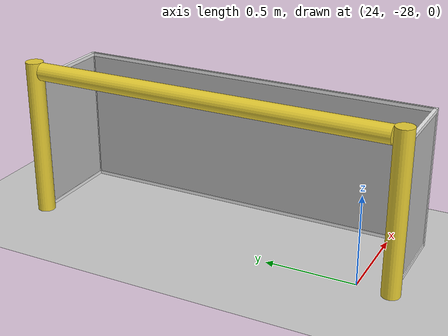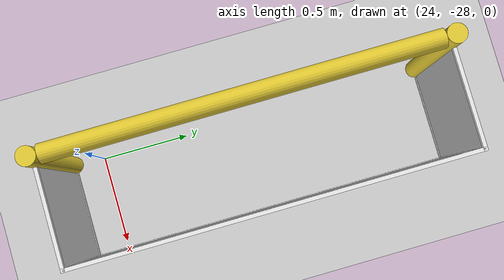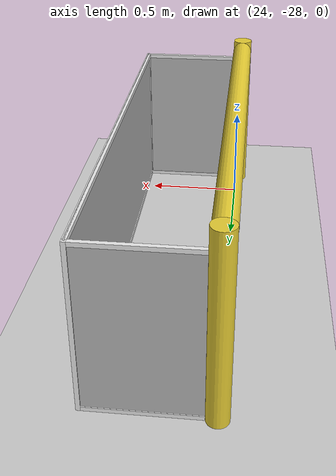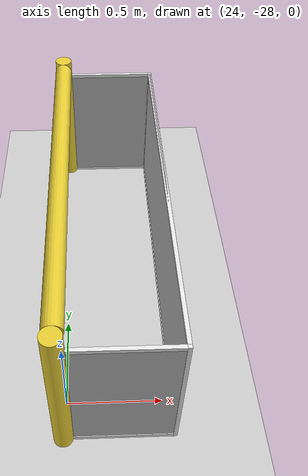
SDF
<sdf version="1.7">
 <world name="default">
  <model name="ground_plane">
   <static>1</static>
   <link name="link">
    <collision name="collision">
     <geometry><plane><normal>0 0 1</normal><size>100 100</size></plane></geometry>
     <surface><friction><ode><mu>100</mu><mu2>50</mu2></ode></friction></surface>
    </collision>
    <visual name="visual">
     <cast_shadows>0</cast_shadows>
     <geometry><plane><normal>0 0 1</normal><size>100 100</size></plane></geometry>
     <material>
      <script><uri>file://media/materials/scripts/gazebo.material</uri><name>Gazebo/Grey</name></script>
     </material>
    </visual>
   </link>
  </model>
  <model name="robocup_3d_goal">
   <static>1</static>
   <link name="left_post">
    <pose>0 1.05 0.45 0 -0 0</pose>
    <collision name="collision">
     <geometry><cylinder><radius>0.05</radius><length>0.9</length></cylinder></geometry>
    </collision>
    <visual name="visual">
     <geometry><cylinder><radius>0.05</radius><length>0.9</length></cylinder></geometry>
     <material>
      <script><uri>file://media/materials/scripts/gazebo.material</uri><name>Gazebo/ZincYellow</name></script>
     </material>
    </visual>
   </link>
   <link name="left_support_horiz_lower">
    <pose>0.3 1.05 0.01 0 -0 0</pose>
    <collision name="collision"><geometry><box><size>0.5 0.02 0.02</size></box></geometry></collision>
    <visual name="visual">
     <geometry><box><size>0.5 0.02 0.02</size></box></geometry>
     <material>
      <script><uri>file://media/materials/scripts/gazebo.material</uri><name>Gazebo/White</name></script>
     </material>
    </visual>
   </link>
   <link name="left_support_horiz_upper">
    <pose>0.3 1.05 0.79 0 -0 0</pose>
    <collision name="collision"><geometry><box><size>0.5 0.02 0.02</size></box></geometry></collision>
    <visual name="visual">
     <geometry><box><size>0.5 0.02 0.02</size></box></geometry>
     <material>
      <script><uri>file://media/materials/scripts/gazebo.material</uri><name>Gazebo/White</name></script>
     </material>
    </visual>
   </link>
   <link name="left_support_vertical">
    <pose>0.56 1.05 0.4 3.14159 1.57079 3.14159</pose>
    <collision name="collision"><geometry><box><size>0.8 0.02 0.02</size></box></geometry></collision>
    <visual name="visual">
     <geometry><box><size>0.8 0.02 0.02</size></box></geometry>
     <material>
      <script><uri>file://media/materials/scripts/gazebo.material</uri><name>Gazebo/White</name></script>
     </material>
    </visual>
   </link>
   <link name="right_support_horiz_lower">
    <pose>0.3 -1.05 0.01 0 -0 0</pose>
    <collision name="collision"><geometry><box><size>0.5 0.02 0.02</size></box></geometry></collision>
    <visual name="visual">
     <geometry><box><size>0.5 0.02 0.02</size></box></geometry>
     <material>
      <script><uri>file://media/materials/scripts/gazebo.material</uri><name>Gazebo/White</name></script>
     </material>
    </visual>
   </link>
   <link name="right_support_horiz_upper">
    <pose>0.3 -1.05 0.79 0 -0 0</pose>
    <collision name="collision"><geometry><box><size>0.5 0.02 0.02</size></box></geometry></collision>
    <visual name="visual">
     <geometry><box><size>0.5 0.02 0.02</size></box></geometry>
     <material>
      <script><uri>file://media/materials/scripts/gazebo.material</uri><name>Gazebo/White</name></script>
     </material>
    </visual>
   </link>
   <link name="right_support_vertical">
    <pose>0.56 -1.05 0.4 3.14159 1.57079 3.14159</pose>
    <collision name="collision"><geometry><box><size>0.8 0.02 0.02</size></box></geometry></collision>
    <visual name="visual">
     <geometry><box><size>0.8 0.02 0.02</size></box></geometry>
     <material>
      <script><uri>file://media/materials/scripts/gazebo.material</uri><name>Gazebo/White</name></script>
     </material>
    </visual>
   </link>
   <link name="center_support_horiz_lower">
    <pose>0.56 0 0.01 3.14159 1.57079 3.14159</pose>
    <collision name="collision"><geometry><box><size>0.02 2.08 0.02</size></box></geometry></collision>
    <visual name="visual">
     <geometry><box><size>0.02 2.08 0.02</size></box></geometry>
     <material>
      <script><uri>file://media/materials/scripts/gazebo.material</uri><name>Gazebo/White</name></script>
     </material>
    </visual>
   </link>
   <link name="center_support_horiz_upper">
    <pose>0.56 0 0.79 3.14159 1.57079 3.14159</pose>
    <collision name="collision"><geometry><box><size>0.02 2.08 0.02</size></box></geometry></collision>
    <visual name="visual">
     <geometry><box><size>0.02 2.08 0.02</size></box></geometry>
     <material>
      <script><uri>file://media/materials/scripts/gazebo.material</uri><name>Gazebo/White</name></script>
     </material>
    </visual>
   </link>
   <link name="right_post">
    <pose>0 -1.05 0.45 0 -0 0</pose>
    <collision name="collision">
     <geometry><cylinder><radius>0.05</radius><length>0.9</length></cylinder></geometry>
    </collision>
    <visual name="visual">
     <geometry><cylinder><radius>0.05</radius><length>0.9</length></cylinder></geometry>
     <material>
      <script><uri>file://media/materials/scripts/gazebo.material</uri><name>Gazebo/ZincYellow</name></script>
     </material>
    </visual>
   </link>
   <link name="crossbar">
    <pose>0 0 0.85 1.57 1.57 0</pose>
    <collision name="collision">
     <geometry><cylinder><radius>0.05</radius><length>2</length></cylinder></geometry>
    </collision>
    <visual name="visual">
     <geometry><cylinder><radius>0.05</radius><length>2</length></cylinder></geometry>
     <material>
      <script><uri>file://media/materials/scripts/gazebo.material</uri><name>Gazebo/ZincYellow</name></script>
     </material>
    </visual>
   </link>
   <link name="center_net">
    <pose>0.56 0 0.4 0 -0 0</pose>
    <collision name="collision"><geometry><box><size>0.01 2.1 0.8</size></box></geometry></collision>
    <visual name="visual">
     <geometry><box><size>0.01 2.1 0.8</size></box></geometry>
     <material>
      <script>
       <uri>model://robocup09_spl_field/materials/scripts/</uri>
       <uri>model://robocup09_spl_field/materials/textures/</uri>
       <name>RoboCup/Net</name>
      </script>
     </material>
    </visual>
   </link>
   <link name="left_net">
    <pose>0.3 1.05 0.4 0 -0 0</pose>
    <collision name="collision"><geometry><box><size>0.5 0.01 0.76</size></box></geometry></collision>
    <visual name="visual">
     <geometry><box><size>0.5 0.01 0.76</size></box></geometry>
     <material>
      <script>
       <uri>model://robocup09_spl_field/materials/scripts/</uri>
       <uri>model://robocup09_spl_field/materials/textures/</uri>
       <name>RoboCup/Net</name>
      </script>
     </material>
    </visual>
   </link>
   <link name="right_net">
    <pose>0.3 -1.05 0.4 0 -0 0</pose>
    <collision name="collision"><geometry><box><size>0.5 0.01 0.76</size></box></geometry></collision>
    <visual name="visual">
     <geometry><box><size>0.5 0.01 0.76</size></box></geometry>
     <material>
      <script>
       <uri>model://robocup09_spl_field/materials/scripts/</uri>
       <uri>model://robocup09_spl_field/materials/textures/</uri>
       <name>RoboCup/Net</name>
      </script>
     </material>
    </visual>
   </link>
   <pose>23.9877 -27.1332 0 0 -0 0</pose>
  </model>
 </world>
</sdf>
